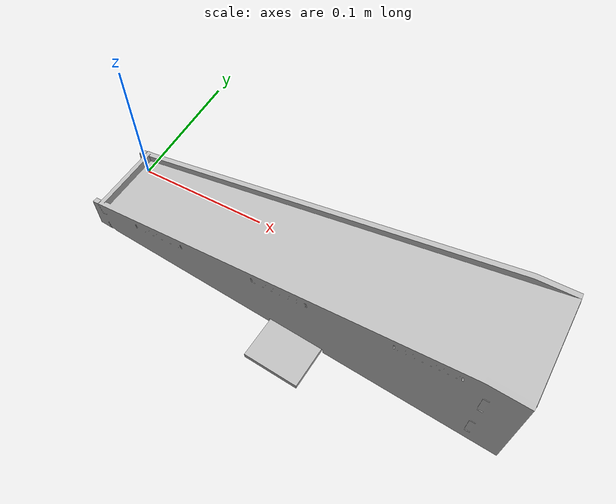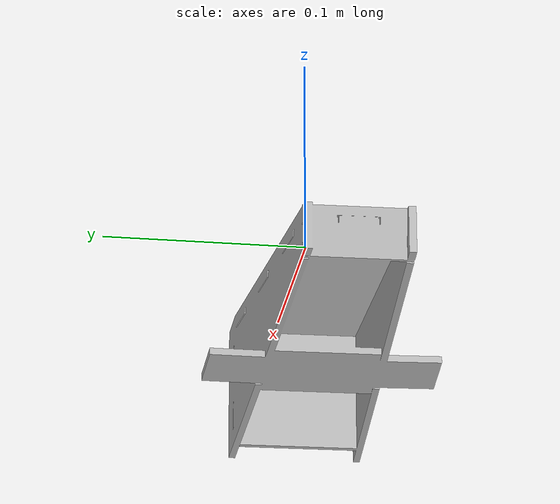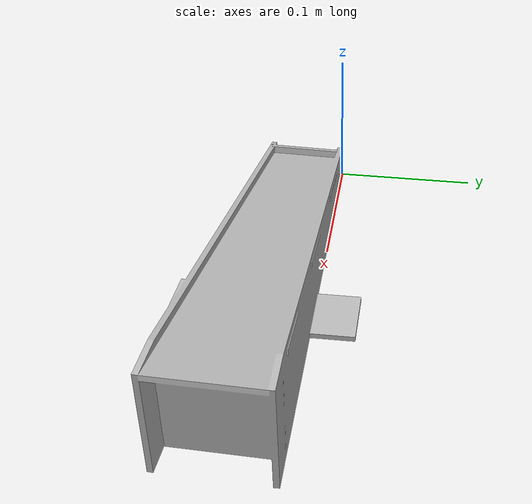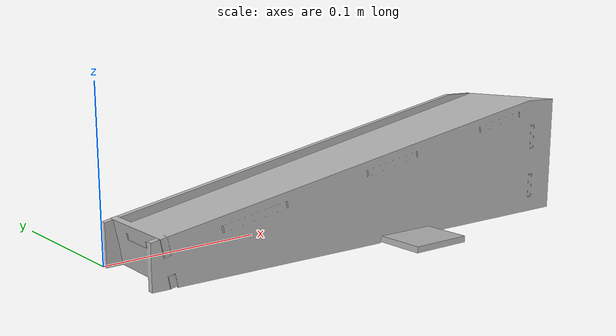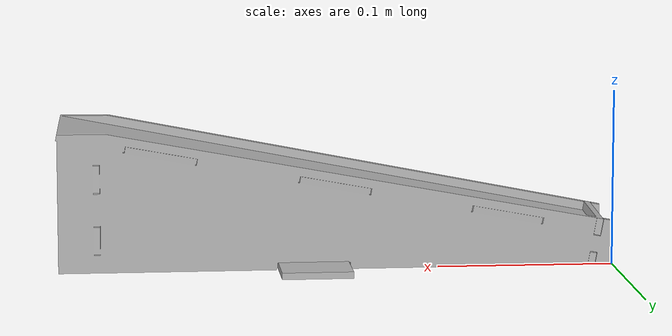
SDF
<?xml version="1.0" ?>
<sdf version="1.6">
  <model name="slide_short">
    <static>true</static>
    <link name="link">
      <collision name="collision">
        <pose>0 0 0 1.57079632679 0 0</pose>
        <geometry>
          <mesh>
            <uri>model://slide_short/meshes/slide_short.obj</uri>
          </mesh>
        </geometry>
	<surface>
         <friction>
           <ode>
             <mu>0.15</mu>
             <mu2>0.15</mu2>
           </ode>
         </friction>
      	</surface>
      </collision>
      <visual name="visual">
        <pose>0 0 0 1.57079632679 0 0</pose>
        <geometry>
          <mesh>
            <uri>model://slide_short/meshes/slide_short.obj</uri>
          </mesh>
        </geometry>
      </visual>
    </link>
  </model>
</sdf>
